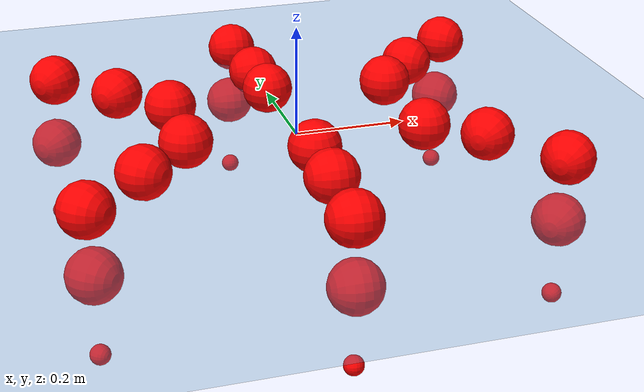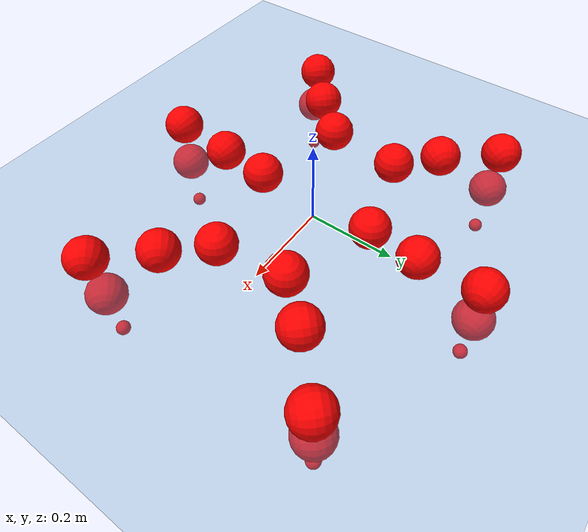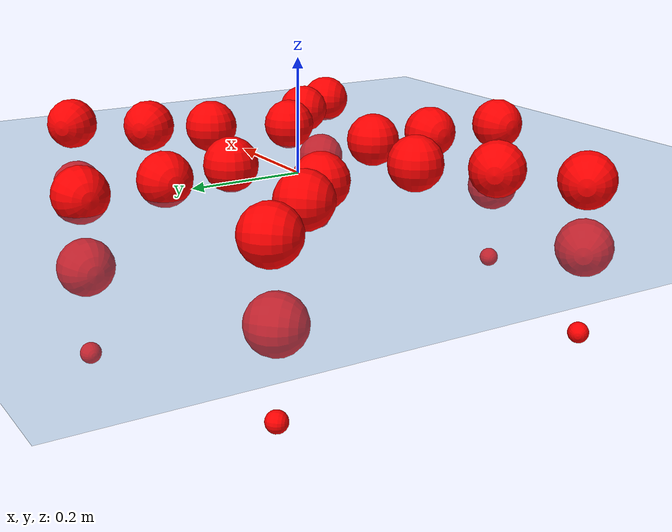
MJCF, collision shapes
<mujoco model="Golem">
  <compiler angle="radian" assetdir="assets" balanceinertia="true" inertiafromgeom="false"/>

  <option timestep="0.005" density="1.2" viscosity="2e-05"/>

  <size nkey="1"/>

  <visual>
    <quality shadowsize="8192"/>
    <map shadowclip="0.5"/>
  </visual>

  <default>
    <default class="/">
      <joint armature="0.01" damping="0.01" frictionloss="0.01"/>
      <geom contype="0" conaffinity="0" group="1" solref="-1000 -80"/>
      <site size="0.01 0.005 0.005" group="5"/>
      <general forcelimited="true" biastype="affine" gainprm="25" biasprm="0 -25 -0.5"/>
      <default class="visual">
        <geom type="mesh" group="2"/>
      </default>
      <default class="collision">
        <geom group="3"/>
      </default>
      <default class="foot">
        <geom size="0.01 0 0" condim="6" group="4" priority="1" solimp="0.015 1 0.01"/>
      </default>
      <default class="reward_collision_sphere">
        <geom group="5" rgba="1 0 0 1"/>
      </default>
    </default>
  </default>

  <asset>
    <texture type="skybox" colorspace="auto" name="//unnamed_texture_0" builtin="gradient" rgb1="0.95 0.95 0.95" rgb2="0.95 0.95 0.95" width="100" height="600"/>
    <texture type="2d" colorspace="auto" name="texplane" builtin="checker" rgb1="0.345 0.575 0.748" rgb2="0.345 0.575 0.748" markrgb="1 1 1" width="512" height="512"/>
    <material name="MatPlane" class="/" texture="texplane" texuniform="true" texrepeat="2 2" specular="0.9"/>
    <mesh name="body" class="/" file="body.stl" scale="0.001 0.001 0.001"/>
    <mesh name="coxa" class="/" file="coxa.stl" scale="0.001 0.001 0.001"/>
    <mesh name="femur" class="/" file="femur.stl" scale="0.001 0.001 0.001"/>
    <mesh name="tibia" class="/" file="tibia.stl" scale="0.001 0.001 0.001"/>
    <mesh name="tarsus" class="/" file="tarsus.stl" scale="0.001 0.001 0.001"/>
  </asset>

  <worldbody>
    <geom name="floor" class="/" size="100 100 0.125" type="plane" group="0" material="MatPlane"/>
    <light name="toplight_shadow" class="/" pos="0 0 5" dir="0.0990148 0.0990148 -0.990148" type="directional" ambient="0.04 0.04 0.04" diffuse="0.55 0.55 0.55" specular="0.12 0.12 0.12"/>
    <light name="toplight_fill" class="/" pos="0 0 5" dir="0.0990148 0.0990148 -0.990148" type="directional" castshadow="false" ambient="0.04 0.04 0.04" diffuse="0.3 0.3 0.3" specular="0.08 0.08 0.08"/>
    <body name="trunk" pos="-0.00936417 -0.00434713 -0.00370016" quat="1 4.94326e-05 0.000245733 -4.77111e-05">
      <inertial pos="-0.00041619 0.000568225 -0.00426942" quat="0.999957 0.00598575 -0.00128416 -0.00699405" mass="5.89721" diaginertia="0.0503827 0.049998 0.00235387"/>
      <joint name="//unnamed_joint_0" type="free"/>
      <geom name="//unnamed_geom_1" class="/" pos="0 0 0.0478902" quat="1 0 0 0" type="mesh" rgba="0.9 0.9 0.9 1" mesh="body"/>
      <site name="imu" class="/" pos="0.131887 -0.0401532 0.0710139" size="0.0115072"/>
      <camera name="track" class="/" pos="0 -2.72619 0" quat="0.707107 0.707107 0 0" mode="trackcom"/>
      <camera name="ego_camera" class="/" pos="0.174302 0 0.0748284" quat="-0.5 -0.5 0.5 0.5"/>
      <body name="coxa_RR" pos="-0.237054 -0.114061 0.0572585" quat="0.382493 -6.96453e-05 0.000154192 -0.923958">
        <inertial pos="-0.00129896 0.0100647 0.00269653" quat="0.999588 0.00676577 0.00821765 -0.0266399" mass="0.345158" diaginertia="0.0466292 0.0507798 0.00254907"/>
        <joint name="coxa_joint_RR" class="/" pos="0 0 0" axis="-0.00955184 0.00910356 -0.999913" stiffness="0.042575" range="-3.14191 3.14715" armature="0.0154132" damping="0.0137228" frictionloss="0.0117855"/>
        <geom name="//unnamed_geom_2" class="/" type="mesh" rgba="0.2 0.2 0.2 1" mesh="coxa"/>
        <geom name="//unnamed_geom_3" class="reward_collision_sphere" size="0.0460288" pos="-0.0402234 0 0"/>
        <body name="femur_RR" pos="0.0883534 0.00354217 -0.00157869" quat="0.499959 -0.500083 0.50029 0.499668">
          <inertial pos="0.00304255 0.00184887 -0.00166489" quat="0.99999 -0.0039785 0.00166878 -0.00141263" mass="0.308713" diaginertia="0.0437048 0.0473747 0.00205769"/>
          <joint name="femur_joint_RR" class="/" pos="0 0 0" axis="-0.00212038 3.51668e-05 -0.999998" stiffness="0.0424709" range="-2.98129 3.25011" armature="0.011705" damping="0" frictionloss="0.00729579"/>
          <geom name="//unnamed_geom_4" class="/" type="mesh" rgba="0.9 0.9 0.9 1" mesh="femur"/>
          <geom name="//unnamed_geom_5" class="reward_collision_sphere" size="0.0460288"/>
          <body name="tibia_RR" pos="0.00628675 -0.138356 -0.0102171" quat="-0.000880474 0.999988 -0.00151737 0.00461159">
            <inertial pos="0.00796592 -0.00055761 -0.00213797" quat="0.999958 -0.000272191 -0.00207434 -0.00891822" mass="0.29503" diaginertia="0.0448141 0.0499673 0.00262327"/>
            <joint name="tibia_joint_RR" class="/" pos="0 0 0" axis="0.0132655 0.0365685 0.999243" range="-3.19188 3.0465" armature="0.0109989" damping="0.0179045" frictionloss="0.0113362"/>
            <geom name="//unnamed_geom_6" class="/" type="mesh" rgba="0.2 0.2 0.2 1" mesh="tibia"/>
            <geom name="//unnamed_geom_7" class="reward_collision_sphere" size="0.0460288"/>
            <body name="tarsus_RR" pos="0.11123 0.00207485 -0.00747522" quat="1 -2.69399e-05 0.000226364 -1.59571e-05">
              <inertial pos="0.0728025 0.000578641 -0.00285244" quat="0.500718 0.500197 0.499901 0.499182" mass="0.30366" diaginertia="0.0439888 0.0463325 0.00234268"/>
              <joint name="tarsus_joint_RR" class="/" pos="0 0 0" axis="-0.00532131 0.00272941 0.999982" range="-2.98271 3.0395" armature="0.0118005" damping="0.0364706" frictionloss="0.0132643"/>
              <geom name="//unnamed_geom_8" class="/" type="mesh" rgba="0.9 0.9 0.9 1" mesh="tarsus"/>
              <geom name="foot_1" class="foot" size="0.011683" pos="0.150167 0 0" quat="0 -0.707107 0 0.707107"/>
              <geom name="//unnamed_geom_10" class="reward_collision_sphere" size="0.0460288"/>
              <geom name="//unnamed_geom_11" class="reward_collision_sphere" size="0.0172608" pos="0.144134 0 0"/>
              <site name="foot_1" class="foot" pos="0.150167 0 0" quat="0 -0.707107 0 0.707107" size="0.0115072"/>
            </body>
          </body>
        </body>
      </body>
      <body name="coxa_RM" pos="-0.00195034 -0.183094 0.0470283" quat="0.70575 0.000694903 -0.00127963 -0.70846">
        <inertial pos="-0.0059631 -2.43046e-05 0.00285134" quat="0.999906 0.00353648 0.0099732 -0.00871491" mass="0.31454" diaginertia="0.0453004 0.0528258 0.00219263"/>
        <joint name="coxa_joint_RM" class="/" pos="0 0 0" axis="0.000397627 -0.000266132 -1" range="-3.10418 3.14795" armature="0.0106954" damping="0.0384398" frictionloss="0.0179067"/>
        <geom name="//unnamed_geom_12" class="/" type="mesh" rgba="0.2 0.2 0.2 1" mesh="coxa"/>
        <geom name="//unnamed_geom_13" class="reward_collision_sphere" size="0.0460288" pos="-0.0402234 0 0"/>
        <body name="femur_RM" pos="0.0784862 -0.00740307 0.0015615" quat="0.500561 -0.498334 0.503408 0.497677">
          <inertial pos="1.97842e-05 0.00216061 0.000306822" quat="0.999972 -0.00465332 -0.0058011 -0.00045681" mass="0.259957" diaginertia="0.0379002 0.044741 0.00208212"/>
          <joint name="femur_joint_RM" class="/" pos="0 0 0" axis="0.0185964 0.0117743 -0.999758" range="-3.10519 3.1354" armature="0.0132443" damping="0" frictionloss="0.0112907"/>
          <geom name="//unnamed_geom_14" class="/" type="mesh" rgba="0.9 0.9 0.9 1" mesh="femur"/>
          <geom name="//unnamed_geom_15" class="reward_collision_sphere" size="0.0460288"/>
          <body name="tibia_RM" pos="-0.00114841 -0.146759 -0.00988028" quat="-1.87065e-05 1 -0.000296855 -0.000810132">
            <inertial pos="-0.00532752 0.00974654 0.00219235" quat="0.999156 -0.00147908 -0.0360801 0.0195629" mass="0.341889" diaginertia="0.0433388 0.0419048 0.00236567"/>
            <joint name="tibia_joint_RM" class="/" pos="0 0 0" axis="0.00127762 -0.000605941 0.999999" range="-2.97474 2.91804" armature="0.0115272" damping="0.0177439" frictionloss="0.0115489"/>
            <geom name="//unnamed_geom_16" class="/" type="mesh" rgba="0.2 0.2 0.2 1" mesh="tibia"/>
            <geom name="//unnamed_geom_17" class="reward_collision_sphere" size="0.0460288"/>
            <body name="tarsus_RM" pos="0.119744 -0.000304289 -0.00501863" quat="1 6.37367e-05 -0.000203939 2.53432e-05">
              <inertial pos="0.081102 0.00523231 -0.00626911" quat="0.463 0.520166 0.491786 0.52269" mass="0.269827" diaginertia="0.0479631 0.0499687 0.00255816"/>
              <joint name="tarsus_joint_RM" class="/" pos="0 0 0" axis="0.00514419 -0.00205386 0.999985" stiffness="0.0263458" range="-3.23634 3.14888" armature="0.0102136" damping="0" frictionloss="0.0107483"/>
              <geom name="//unnamed_geom_18" class="/" type="mesh" rgba="0.9 0.9 0.9 1" mesh="tarsus"/>
              <geom name="foot_2" class="foot" size="0.0113453" pos="0.150167 0 0" quat="0 -0.707107 0 0.707107"/>
              <geom name="//unnamed_geom_20" class="reward_collision_sphere" size="0.0460288"/>
              <geom name="//unnamed_geom_21" class="reward_collision_sphere" size="0.0172608" pos="0.144134 0 0"/>
              <site name="foot_2" class="foot" pos="0.150167 0 0" quat="0 -0.707107 0 0.707107" size="0.0115072"/>
            </body>
          </body>
        </body>
      </body>
      <body name="coxa_RF" pos="0.240954 -0.12286 0.040077" quat="0.92353 -0.000391448 0.00113885 -0.383525">
        <inertial pos="0.00105065 -0.00382075 0.00196502" quat="0.999997 0.0023043 0.000288047 -0.000105054" mass="0.310884" diaginertia="0.0431859 0.0466692 0.00244281"/>
        <joint name="coxa_joint_RF" class="/" pos="0 0 0" axis="6.01632e-05 -0.00205104 -0.999998" stiffness="0.00909917" range="-3.09921 3.13515" armature="0.00718887" damping="0.0213821" frictionloss="0.0125746"/>
        <geom name="//unnamed_geom_22" class="/" type="mesh" rgba="0.2 0.2 0.2 1" mesh="coxa"/>
        <geom name="//unnamed_geom_23" class="reward_collision_sphere" size="0.0460288" pos="-0.0402234 0 0"/>
        <body name="femur_RF" pos="0.0760522 0.00237395 0.00612136" quat="0.499529 -0.49968 0.50041 0.50038">
          <inertial pos="-0.00218503 0.00493658 0.00215689" quat="0.999927 -0.00898177 -0.00596459 0.00539216" mass="0.314234" diaginertia="0.0432733 0.0515897 0.0021679"/>
          <joint name="femur_joint_RF" class="/" pos="0 0 0" axis="-0.000300279 -0.000115858 -1" range="-2.94565 3.11893" armature="0.0162836" damping="0.00193091" frictionloss="0.00771976"/>
          <geom name="//unnamed_geom_24" class="/" type="mesh" rgba="0.9 0.9 0.9 1" mesh="femur"/>
          <geom name="//unnamed_geom_25" class="reward_collision_sphere" size="0.0460288"/>
          <body name="tibia_RF" pos="0.00652399 -0.146654 -0.0103947" quat="0.000251392 0.999999 -0.00103907 0.000109356">
            <inertial pos="0.0101393 -0.00153646 -0.000462264" quat="0.999996 -0.00093315 0.00205371 -0.00168527" mass="0.272484" diaginertia="0.0458525 0.0444235 0.00240965"/>
            <joint name="tibia_joint_RF" class="/" pos="0 0 0" axis="-0.0333223 -0.0355541 0.998812" range="-3.13415 3.33528" armature="0.0123851" damping="0.0120442" frictionloss="0.0117273"/>
            <geom name="//unnamed_geom_26" class="/" type="mesh" rgba="0.2 0.2 0.2 1" mesh="tibia"/>
            <geom name="//unnamed_geom_27" class="reward_collision_sphere" size="0.0460288"/>
            <body name="tarsus_RF" pos="0.121849 -0.0087939 -0.00755565" quat="0.99999 0.00285046 -7.50767e-05 0.0035347">
              <inertial pos="0.0794806 0.000498621 0.00118691" quat="0.501248 0.491889 0.503564 0.503209" mass="0.297538" diaginertia="0.0435937 0.0466701 0.002217"/>
              <joint name="tarsus_joint_RF" class="/" pos="0 0 0" axis="-0.00258521 -0.0228664 0.999735" stiffness="0.0118701" range="-3.10017 3.14258" armature="0.00909308" damping="0.000215604" frictionloss="0.0134354"/>
              <geom name="//unnamed_geom_28" class="/" type="mesh" rgba="0.9 0.9 0.9 1" mesh="tarsus"/>
              <geom name="foot_3" class="foot" size="0.0088182" pos="0.150167 0 0" quat="0 -0.707107 0 0.707107"/>
              <geom name="//unnamed_geom_30" class="reward_collision_sphere" size="0.0460288"/>
              <geom name="//unnamed_geom_31" class="reward_collision_sphere" size="0.0172608" pos="0.144134 0 0"/>
              <site name="foot_3" class="foot" pos="0.150167 0 0" quat="0 -0.707107 0 0.707107" size="0.0115072"/>
            </body>
          </body>
        </body>
      </body>
      <body name="coxa_LR" pos="-0.228786 0.114241 0.0500504" quat="0.383067 0.00056541 5.7531e-06 0.923721">
        <inertial pos="0.0088546 -0.00335704 0.010715" quat="0.99879 0.00927166 -0.0462944 -0.0137737" mass="0.301256" diaginertia="0.0410523 0.0376122 0.00214284"/>
        <joint name="coxa_joint_LR" class="/" pos="0 0 0" axis="-0.0414611 0.0187084 -0.998965" range="-3.12769 3.21146" armature="0.0139588" damping="0.00501773" frictionloss="0.015477"/>
        <geom name="//unnamed_geom_32" class="/" type="mesh" rgba="0.2 0.2 0.2 1" mesh="coxa"/>
        <geom name="//unnamed_geom_33" class="reward_collision_sphere" size="0.0460288" pos="-0.0402234 0 0"/>
        <body name="femur_LR" pos="0.0731738 0.00331298 0.00215535" quat="0.500007 -0.500054 0.499968 0.49997">
          <inertial pos="0.00181615 0.00168283 -0.00149789" quat="0.999811 -0.0124359 0.0101757 -0.0109609" mass="0.304879" diaginertia="0.0450051 0.0438771 0.00234364"/>
          <joint name="femur_joint_LR" class="/" pos="0 0 0" axis="0.0209241 -0.00706907 0.999756" range="-3.15499 3.10195" armature="0.0117647" damping="0.0168303" frictionloss="0.017442"/>
          <geom name="//unnamed_geom_34" class="/" type="mesh" rgba="0.9 0.9 0.9 1" mesh="femur"/>
          <geom name="//unnamed_geom_35" class="reward_collision_sphere" size="0.0460288"/>
          <body name="tibia_LR" pos="0.00611827 -0.148254 -0.00788148" quat="-0.000195891 0.999991 -0.00272599 0.00333763">
            <inertial pos="0.00154797 0.00195316 -0.000416217" quat="0.999989 0.00459029 0.000207044 -0.000972967" mass="0.288041" diaginertia="0.0425552 0.0455138 0.00220958"/>
            <joint name="tibia_joint_LR" class="/" pos="0 0 0" axis="-0.00213887 0.0201535 -0.999795" range="-3.06967 3.27562" armature="0.0105776" damping="0.00408854" frictionloss="0.0125516"/>
            <geom name="//unnamed_geom_36" class="/" type="mesh" rgba="0.2 0.2 0.2 1" mesh="tibia"/>
            <geom name="//unnamed_geom_37" class="reward_collision_sphere" size="0.0460288"/>
            <body name="tarsus_LR" pos="0.125891 3.99224e-05 -0.00667929" quat="0.99999 0.00116405 -0.00352983 0.0026533">
              <inertial pos="0.0701481 0.0004259 0.0100418" quat="0.4962 0.500079 0.50304 0.500657" mass="0.319018" diaginertia="0.0432185 0.0498766 0.00226132"/>
              <joint name="tarsus_joint_LR" class="/" pos="0 0 0" axis="-0.0368755 0.0181266 -0.999155" range="-2.99075 3.28794" armature="0.0124676" damping="0.0174052" frictionloss="0.0106573"/>
              <geom name="//unnamed_geom_38" class="/" type="mesh" rgba="0.9 0.9 0.9 1" mesh="tarsus"/>
              <geom name="foot_4" class="foot" size="0.00968231" pos="0.150167 0 0" quat="0.707107 0 -0.707107 0"/>
              <geom name="//unnamed_geom_40" class="reward_collision_sphere" size="0.0460288"/>
              <geom name="//unnamed_geom_41" class="reward_collision_sphere" size="0.0172608" pos="0.144134 0 0"/>
              <site name="foot_4" class="foot" pos="0.150167 0 0" quat="0.707107 0 -0.707107 0" size="0.0115072"/>
            </body>
          </body>
        </body>
      </body>
      <body name="coxa_LM" pos="-0.00667496 0.18103 0.0405165" quat="0.707758 0.000228011 0.00103906 0.706455">
        <inertial pos="-0.000214668 0.00143957 0.00466459" quat="0.999691 -0.0178414 -0.00596214 -0.0162518" mass="0.309425" diaginertia="0.0462556 0.0487837 0.00240122"/>
        <joint name="coxa_joint_LM" class="/" pos="0 0 0" axis="-0.00120338 0.00533793 -0.999985" stiffness="0.0237555" range="-3.28646 3.17929" armature="0.00995267" damping="0" frictionloss="0.00758044"/>
        <geom name="//unnamed_geom_42" class="/" type="mesh" rgba="0.2 0.2 0.2 1" mesh="coxa"/>
        <geom name="//unnamed_geom_43" class="reward_collision_sphere" size="0.0460288" pos="-0.0402234 0 0"/>
        <body name="femur_LM" pos="0.0766946 -0.00280919 -0.00972616" quat="0.502365 -0.499467 0.49842 0.49974">
          <inertial pos="-0.00304354 0.00743993 -0.0105217" quat="0.998922 0.0377037 0.00254214 -0.0269483" mass="0.301807" diaginertia="0.0411772 0.053231 0.00228041"/>
          <joint name="femur_joint_LM" class="/" pos="0 0 0" axis="0.0229514 0.00776904 0.999706" range="-3.14329 3.2784" armature="0.00931947" damping="0.017709" frictionloss="0.0118987"/>
          <geom name="//unnamed_geom_44" class="/" type="mesh" rgba="0.9 0.9 0.9 1" mesh="femur"/>
          <geom name="//unnamed_geom_45" class="reward_collision_sphere" size="0.0460288"/>
          <body name="tibia_LM" pos="0.00335632 -0.14403 0.00781989" quat="0.0019606 0.999986 0.00273797 0.0040575">
            <inertial pos="-0.000136607 0.0110189 -0.00107774" quat="0.999671 0.00122113 -0.000629307 0.0256313" mass="0.311972" diaginertia="0.042763 0.042308 0.00231632"/>
            <joint name="tibia_joint_LM" class="/" pos="0 0 0" axis="-0.0175395 -0.00371062 -0.999839" stiffness="0.0078182" range="-3.1174 3.11874" armature="0.0070756" damping="0.0551965" frictionloss="0.0136141"/>
            <geom name="//unnamed_geom_46" class="/" type="mesh" rgba="0.2 0.2 0.2 1" mesh="tibia"/>
            <geom name="//unnamed_geom_47" class="reward_collision_sphere" size="0.0460288"/>
            <body name="tarsus_LM" pos="0.115776 0.000503849 -0.00475743" quat="0.999985 0.00167971 -0.00243848 0.00468371">
              <inertial pos="0.0859851 -0.00161003 0.00368226" quat="0.499918 0.499406 0.501298 0.499375" mass="0.321252" diaginertia="0.0502044 0.0530198 0.00244838"/>
              <joint name="tarsus_joint_LM" class="/" pos="0 0 0" axis="0.00229715 0.000281692 -0.999997" stiffness="0.0223774" range="-3.34823 3.13467" armature="0.00667101" damping="0.0612038" frictionloss="0.0103042"/>
              <geom name="//unnamed_geom_48" class="/" type="mesh" rgba="0.9 0.9 0.9 1" mesh="tarsus"/>
              <geom name="foot_5" class="foot" size="0.0107855" pos="0.150167 0 0" quat="0.707107 0 -0.707107 0"/>
              <geom name="//unnamed_geom_50" class="reward_collision_sphere" size="0.0460288"/>
              <geom name="//unnamed_geom_51" class="reward_collision_sphere" size="0.0172608" pos="0.144134 0 0"/>
              <site name="foot_5" class="foot" pos="0.150167 0 0" quat="0.707107 0 -0.707107 0" size="0.0115072"/>
            </body>
          </body>
        </body>
      </body>
      <body name="coxa_LF" pos="0.228034 0.103935 0.0575159" quat="0.923554 -0.000473458 -0.000154495 0.383469">
        <inertial pos="-0.000984113 0.00145943 0.00204884" quat="0.999617 -0.00866052 0.0112865 -0.0237298" mass="0.359219" diaginertia="0.0497116 0.0536107 0.0025902"/>
        <joint name="coxa_joint_LF" class="/" pos="0 0 0" axis="0.000785947 0.00130516 -0.999999" stiffness="0.0228881" range="-3.08729 2.93194" armature="0.00716371" damping="0.0624953" frictionloss="0.0145527"/>
        <geom name="//unnamed_geom_52" class="/" type="mesh" rgba="0.2 0.2 0.2 1" mesh="coxa"/>
        <geom name="//unnamed_geom_53" class="reward_collision_sphere" size="0.0460288" pos="-0.0402234 0 0"/>
        <body name="femur_LF" pos="0.0773724 0.00931688 -0.0034334" quat="0.497862 -0.498251 0.503393 0.500474">
          <inertial pos="-0.0101298 -0.000489297 0.00170291" quat="0.999998 -0.00148724 0.00125052 0.000189816" mass="0.30453" diaginertia="0.0435099 0.0465248 0.00250991"/>
          <joint name="femur_joint_LF" class="/" pos="0 0 0" axis="-0.00438959 0.0036222 0.999984" range="-3.2344 3.15031" armature="0.00715645" damping="0" frictionloss="0.0116232"/>
          <geom name="//unnamed_geom_54" class="/" type="mesh" rgba="0.9 0.9 0.9 1" mesh="femur"/>
          <geom name="//unnamed_geom_55" class="reward_collision_sphere" size="0.0460288"/>
          <body name="tibia_LF" pos="0.00451154 -0.15585 -0.00464422" quat="0.000804103 1 -0.000199687 -7.21237e-05">
            <inertial pos="0.000443849 -0.00613523 -0.00251402" quat="0.999995 -0.00280912 0.000425221 -0.00105793" mass="0.317481" diaginertia="0.0439423 0.04836 0.0023602"/>
            <joint name="tibia_joint_LF" class="/" pos="0 0 0" axis="-0.0013605 0.000197635 -0.999999" stiffness="0.0235883" range="-3.12683 3.17345" armature="0.0144313" damping="0.0347288" frictionloss="0.00957811"/>
            <geom name="//unnamed_geom_56" class="/" type="mesh" rgba="0.2 0.2 0.2 1" mesh="tibia"/>
            <geom name="//unnamed_geom_57" class="reward_collision_sphere" size="0.0460288"/>
            <body name="tarsus_LF" pos="0.117595 -0.00453452 -0.00456478" quat="0.999989 -0.00422841 0.00201483 -0.000179053">
              <inertial pos="0.08044 0.00279125 0.00313615" quat="0.524568 0.495535 0.485544 0.493478" mass="0.288496" diaginertia="0.0439877 0.042704 0.00223374"/>
              <joint name="tarsus_joint_LF" class="/" pos="0 0 0" axis="0.0100356 -0.0121322 -0.999876" range="-3.00903 3.07697" armature="0.0118153" damping="0.059346" frictionloss="0.0104623"/>
              <geom name="//unnamed_geom_58" class="/" type="mesh" rgba="0.9 0.9 0.9 1" mesh="tarsus"/>
              <geom name="foot_6" class="foot" size="0.0108543" pos="0.150167 0 0" quat="0.707107 0 -0.707107 0"/>
              <geom name="//unnamed_geom_60" class="reward_collision_sphere" size="0.0460288"/>
              <geom name="//unnamed_geom_61" class="reward_collision_sphere" size="0.0172608" pos="0.144134 0 0"/>
              <site name="foot_6" class="foot" pos="0.150167 0 0" quat="0.707107 0 -0.707107 0" size="0.0115072"/>
            </body>
          </body>
        </body>
      </body>
    </body>
  </worldbody>

  <contact>
    <pair class="/" geom1="floor" geom2="foot_1" name="//unnamed_contact_0"/>
    <pair class="/" geom1="floor" geom2="foot_2" name="//unnamed_contact_1"/>
    <pair class="/" geom1="floor" geom2="foot_3" name="//unnamed_contact_2"/>
    <pair class="/" geom1="floor" geom2="foot_4" name="//unnamed_contact_3"/>
    <pair class="/" geom1="floor" geom2="foot_5" name="//unnamed_contact_4"/>
    <pair class="/" geom1="floor" geom2="foot_6" name="//unnamed_contact_5"/>
  </contact>

  <actuator>
    <general name="coxa_joint_RR" class="/" joint="coxa_joint_RR" forcerange="-8.91367 8.91367" gainprm="27.1964" biasprm="0 -27.1964 -0.545415"/>
    <general name="femur_joint_RR" class="/" joint="femur_joint_RR" forcerange="-8.52262 8.52262" gainprm="27.1964" biasprm="0 -27.1964 -0.545415"/>
    <general name="tibia_joint_RR" class="/" joint="tibia_joint_RR" forcerange="-8.7359 8.7359" gainprm="27.1964" biasprm="0 -27.1964 -0.545415"/>
    <general name="tarsus_joint_RR" class="/" joint="tarsus_joint_RR" forcerange="-6.39464 6.39464" gainprm="27.1964" biasprm="0 -27.1964 -0.545415"/>
    <general name="coxa_joint_RM" class="/" joint="coxa_joint_RM" forcerange="-11.4969 11.4969" gainprm="27.1964" biasprm="0 -27.1964 -0.545415"/>
    <general name="femur_joint_RM" class="/" joint="femur_joint_RM" forcerange="-8.25721 8.25721" gainprm="27.1964" biasprm="0 -27.1964 -0.545415"/>
    <general name="tibia_joint_RM" class="/" joint="tibia_joint_RM" forcerange="-9.86481 9.86481" gainprm="27.1964" biasprm="0 -27.1964 -0.545415"/>
    <general name="tarsus_joint_RM" class="/" joint="tarsus_joint_RM" forcerange="-8.92984 8.92984" gainprm="27.1964" biasprm="0 -27.1964 -0.545415"/>
    <general name="coxa_joint_RF" class="/" joint="coxa_joint_RF" forcerange="-11.2371 11.2371" gainprm="27.1964" biasprm="0 -27.1964 -0.545415"/>
    <general name="femur_joint_RF" class="/" joint="femur_joint_RF" forcerange="-9.61677 9.61677" gainprm="27.1964" biasprm="0 -27.1964 -0.545415"/>
    <general name="tibia_joint_RF" class="/" joint="tibia_joint_RF" forcerange="-11.6663 11.6663" gainprm="27.1964" biasprm="0 -27.1964 -0.545415"/>
    <general name="tarsus_joint_RF" class="/" joint="tarsus_joint_RF" forcerange="-7.30165 7.30165" gainprm="27.1964" biasprm="0 -27.1964 -0.545415"/>
    <general name="coxa_joint_LR" class="/" joint="coxa_joint_LR" forcerange="-8.31477 8.31477" gainprm="27.1964" biasprm="0 -27.1964 -0.545415"/>
    <general name="femur_joint_LR" class="/" joint="femur_joint_LR" forcerange="-9.00074 9.00074" gainprm="27.1964" biasprm="0 -27.1964 -0.545415"/>
    <general name="tibia_joint_LR" class="/" joint="tibia_joint_LR" forcerange="-7.79652 7.79652" gainprm="27.1964" biasprm="0 -27.1964 -0.545415"/>
    <general name="tarsus_joint_LR" class="/" joint="tarsus_joint_LR" forcerange="-7.91719 7.91719" gainprm="27.1964" biasprm="0 -27.1964 -0.545415"/>
    <general name="coxa_joint_LM" class="/" joint="coxa_joint_LM" forcerange="-6.12373 6.12373" gainprm="27.1964" biasprm="0 -27.1964 -0.545415"/>
    <general name="femur_joint_LM" class="/" joint="femur_joint_LM" forcerange="-8.30023 8.30023" gainprm="27.1964" biasprm="0 -27.1964 -0.545415"/>
    <general name="tibia_joint_LM" class="/" joint="tibia_joint_LM" forcerange="-7.86399 7.86399" gainprm="27.1964" biasprm="0 -27.1964 -0.545415"/>
    <general name="tarsus_joint_LM" class="/" joint="tarsus_joint_LM" forcerange="-9.00564 9.00564" gainprm="27.1964" biasprm="0 -27.1964 -0.545415"/>
    <general name="coxa_joint_LF" class="/" joint="coxa_joint_LF" forcerange="-11.7654 11.7654" gainprm="27.1964" biasprm="0 -27.1964 -0.545415"/>
    <general name="femur_joint_LF" class="/" joint="femur_joint_LF" forcerange="-8.93732 8.93732" gainprm="27.1964" biasprm="0 -27.1964 -0.545415"/>
    <general name="tibia_joint_LF" class="/" joint="tibia_joint_LF" forcerange="-8.45652 8.45652" gainprm="27.1964" biasprm="0 -27.1964 -0.545415"/>
    <general name="tarsus_joint_LF" class="/" joint="tarsus_joint_LF" forcerange="-9.63476 9.63476" gainprm="27.1964" biasprm="0 -27.1964 -0.545415"/>
  </actuator>

  <sensor>
    <gyro site="imu" name="imu_angular_velocity"/>
    <velocimeter site="imu" name="imu_linear_velocity"/>
    <framelinvel objtype="site" objname="foot_1" name="foot_1_global_linear_velocity"/>
    <framelinvel objtype="site" objname="foot_2" name="foot_2_global_linear_velocity"/>
    <framelinvel objtype="site" objname="foot_3" name="foot_3_global_linear_velocity"/>
    <framelinvel objtype="site" objname="foot_4" name="foot_4_global_linear_velocity"/>
    <framelinvel objtype="site" objname="foot_5" name="foot_5_global_linear_velocity"/>
    <framelinvel objtype="site" objname="foot_6" name="foot_6_global_linear_velocity"/>
  </sensor>

  <keyframe>
    <key name="home" qpos="0 0 0.1457 1 0 0 0 0 0 0 0 0 0 0 0 0 0 0 0 0 0 0 0 0 0 0 0 0 0 0 0"/>
  </keyframe>
</mujoco>
